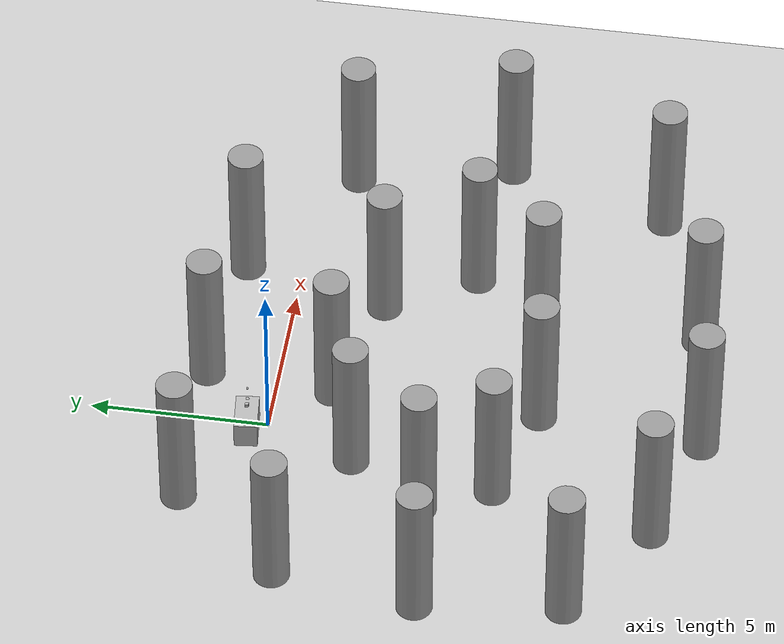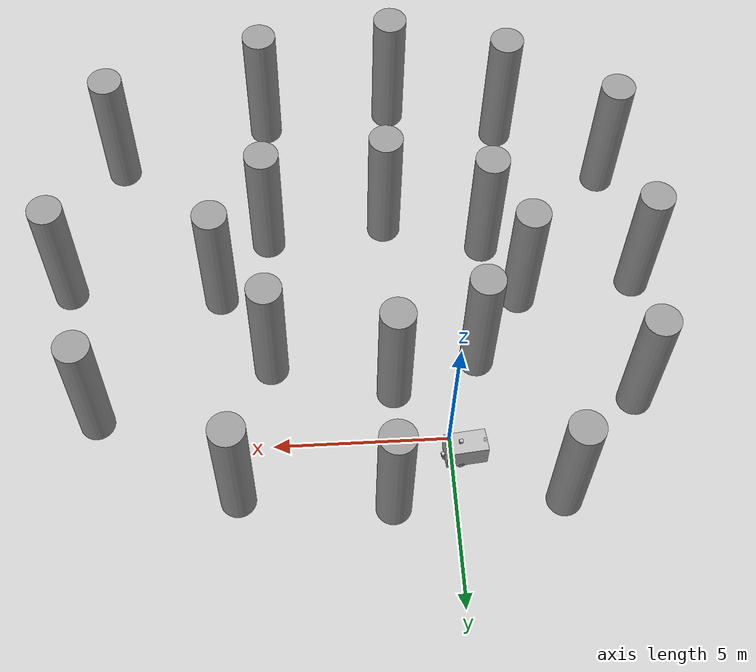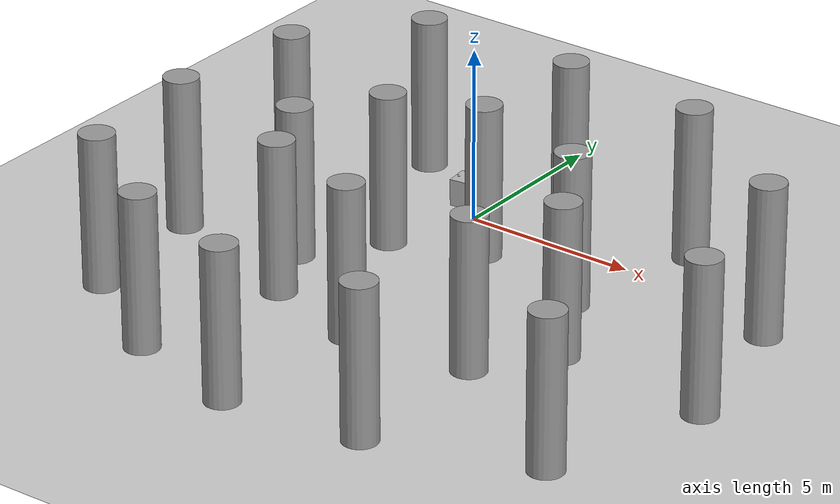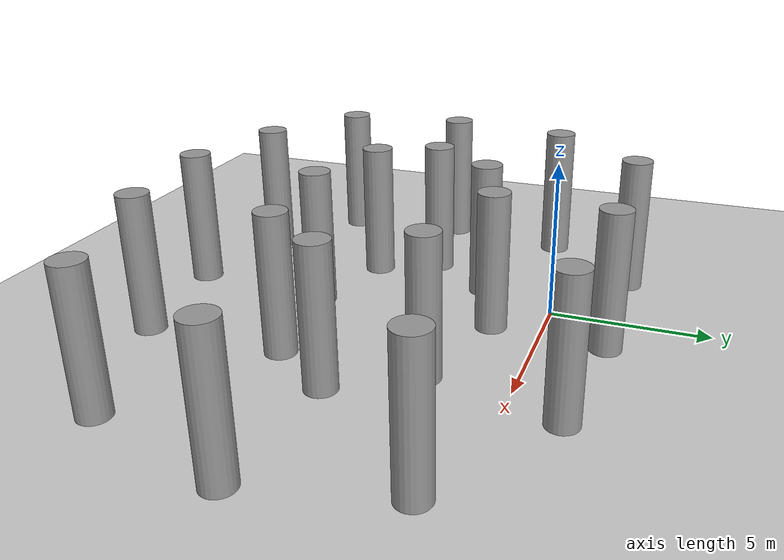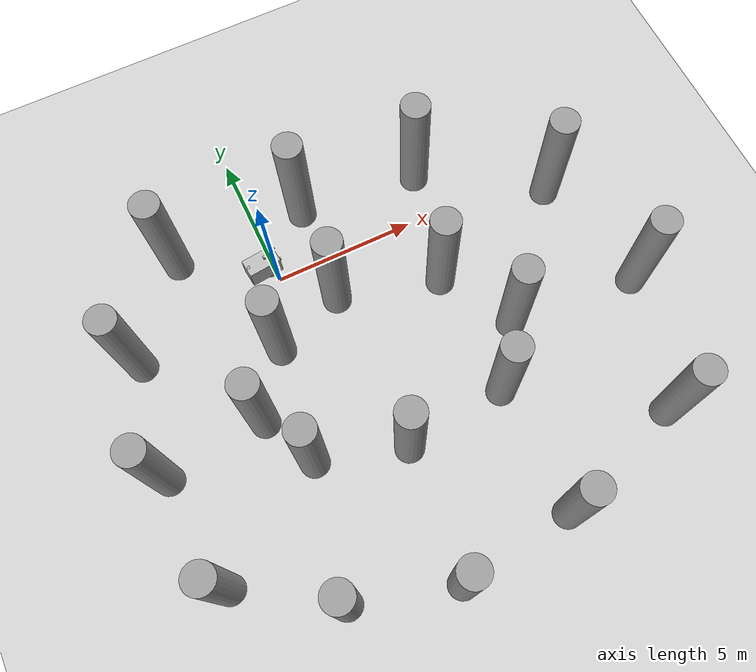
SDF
<sdf version="1.7">
 <world name="default">
  <light name="sun" type="directional">
   <pose>0 0 10 0 -0 0</pose>
   <diffuse>0.8 0.8 0.8 1</diffuse>
   <specular>0.2 0.2 0.2 1</specular>
   <attenuation>
    <range>1000</range>
    <constant>0.9</constant>
    <linear>0.01</linear>
    <quadratic>0.001</quadratic>
   </attenuation>
   <direction>-0.5 0.1 -0.9</direction>
   <spot><inner_angle>0</inner_angle><outer_angle>0</outer_angle><falloff>0</falloff></spot>
  </light>
  <model name="ground_plane">
   <static>1</static>
   <link name="link">
    <collision name="collision">
     <geometry><plane><normal>0 0 1</normal><size>100 100</size></plane></geometry>
     <surface>
      <contact><collide_bitmask>65535</collide_bitmask></contact>
      <friction><ode><mu>100</mu><mu2>50</mu2></ode></friction>
     </surface>
    </collision>
    <visual name="visual">
     <cast_shadows>0</cast_shadows>
     <geometry><plane><normal>0 0 1</normal><size>100 100</size></plane></geometry>
     <material>
      <script><uri>file://media/materials/scripts/gazebo.material</uri><name>Gazebo/Grey</name></script>
     </material>
    </visual>
   </link>
  </model>
  <gravity>0 0 -9.8</gravity>
  <magnetic_field>6e-06 2.3e-05 -4.2e-05</magnetic_field>
  <atmosphere type="adiabatic"/>
  <physics type="ode">
   <max_step_size>0.001</max_step_size>
   <real_time_factor>1</real_time_factor>
   <real_time_update_rate>1000</real_time_update_rate>
  </physics>
  <scene><ambient>0.4 0.4 0.4 1</ambient><background>0.7 0.7 0.7 1</background><shadows>1</shadows></scene>
  <spherical_coordinates>
   <surface_model>EARTH_WGS84</surface_model>
   <latitude_deg>0</latitude_deg>
   <longitude_deg>0</longitude_deg>
   <elevation>0</elevation>
   <heading_deg>0</heading_deg>
  </spherical_coordinates>
  <model name="hermes">
   <link name="base_link">
    <inertial>
     <pose>6e-06 0 -2e-06 0 -0 0</pose>
     <mass>1.00001</mass>
     <inertia>
      <ixx>0.0150013</ixx>
      <ixy>0</ixy>
      <ixz>1.14046e-06</ixz>
      <iyy>0.0375053</iyy>
      <iyz>0</iyz>
      <izz>0.037505</izz>
     </inertia>
    </inertial>
    <collision name="base_link_collision"><geometry><box><size>0.6 0.3 0.3</size></box></geometry></collision>
    <collision name="base_link_fixed_joint_lump__lidar_link_collision_1">
     <pose>0.630975 0 -0.180747 0 -0 0</pose>
     <geometry><box><size>0.1 0.1 0.1</size></box></geometry>
    </collision>
    <visual name="base_link_visual"><geometry><box><size>1.16195 0.651 0.77596</size></box></geometry></visual>
    <visual name="base_link_fixed_joint_lump__camera_link_visual_1">
     <pose>0.555975 0 0.72404 0 1.0466 0</pose>
     <geometry><box><size>0.05 0.05 0.05</size></box></geometry>
    </visual>
    <visual name="base_link_fixed_joint_lump__gps_link_visual_2">
     <pose>0.16 0 0.48011 0 -0 0</pose>
     <geometry><box><size>0.1 0.1 0.1</size></box></geometry>
    </visual>
    <visual name="base_link_fixed_joint_lump__imu_link_visual_3">
     <pose>0.16 0 0 0 -0 0</pose>
     <geometry><box><size>0.05 0.05 0.05</size></box></geometry>
    </visual>
    <visual name="base_link_fixed_joint_lump__lidar_link_visual_4">
     <pose>0.630975 0 -0.180747 0 -0 0</pose>
     <geometry><box><size>0.1 0.1 0.1</size></box></geometry>
    </visual>
    <sensor name="camera1" type="depth">
     <always_on>1</always_on>
     <update_rate>20</update_rate>
     <visualize>1</visualize>
     <camera>
      <horizontal_fov>1.047</horizontal_fov>
      <image><width>640</width><height>480</height><format>R8G8B8</format></image>
      <depth_camera><output>depths</output></depth_camera>
      <clip><near>0.1</near><far>20</far></clip>
     </camera>
     <plugin name="camera_controller" filename="libgazebo_ros_openni_kinect.so">
      <alwaysOn>1</alwaysOn>
      <updateRate>10.0</updateRate>
      <cameraName>camera</cameraName>
      <frameName>camera_link</frameName>
      <imageTopicName>rgb/image_raw</imageTopicName>
      <depthImageTopicName>depth/image_raw</depthImageTopicName>
      <pointCloudTopicName>depth/points</pointCloudTopicName>
      <cameraInfoTopicName>rgb/camera_info</cameraInfoTopicName>
      <depthImageCameraInfoTopicName>depth/camera_info</depthImageCameraInfoTopicName>
      <pointCloudCutoff>0.4</pointCloudCutoff>
      <hackBaseline>0.07</hackBaseline>
      <distortionK1>0.0</distortionK1>
      <distortionK2>0.0</distortionK2>
      <distortionK3>0.0</distortionK3>
      <distortionT1>0.0</distortionT1>
      <distortionT2>0.0</distortionT2>
      <CxPrime>0.0</CxPrime>
      <Cx>0.0</Cx>
      <Cy>0.0</Cy>
      <focalLength>0.0</focalLength>
      <robotNamespace>/</robotNamespace>
     </plugin>
     <pose>0.555975 0 0.72404 0 1.0466 0</pose>
    </sensor>
    <sensor name="imu_sensor" type="imu">
     <always_on>1</always_on>
     <update_rate>100</update_rate>
     <visualize>0</visualize>
     <topic>imu</topic>
     <plugin name="imu_plugin" filename="libgazebo_ros_imu_sensor.so">
      <topicName>imu</topicName>
      <bodyName>imu_link</bodyName>
      <updateRateHZ>100.0</updateRateHZ>
      <gaussianNoise>0.0</gaussianNoise>
      <xyzOffset>0 0 0</xyzOffset>
      <rpyOffset>0 0 0</rpyOffset>
      <frameName>imu_link</frameName>
      <robotNamespace>/</robotNamespace>
     </plugin>
     <pose>0.16 0 0 0 -0 0</pose>
    </sensor>
    <sensor name="head_lidar_sensor" type="ray">
     <visualize>1</visualize>
     <update_rate>25</update_rate>
     <ray>
      <scan>
       <horizontal>
        <samples>720</samples>
        <resolution>1</resolution>
        <min_angle>-2.35619</min_angle>
        <max_angle>2.35619</max_angle>
       </horizontal>
       <vertical><samples>1</samples><min_angle>0</min_angle><max_angle>0</max_angle></vertical>
      </scan>
      <range><min>0.5</min><max>20</max><resolution>0.001</resolution></range>
     </ray>
     <plugin name="gazebo_ros_head_hokuyo_controller" filename="libgazebo_ros_laser.so">
      <topicName>scan</topicName>
      <frameName>lidar_link</frameName>
      <robotNamespace>/</robotNamespace>
     </plugin>
     <pose>0.630975 0 -0.180747 0 -0 0</pose>
    </sensor>
   </link>
   <joint name="back_caster_joint" type="revolute">
    <pose relative_to="base_link">-0.491695 0 0 0 -0 0</pose>
    <parent>base_link</parent>
    <child>back_caster</child>
    <axis>
     <xyz>0 0 1</xyz>
     <limit><lower>-1e+16</lower><upper>1e+16</upper></limit>
     <dynamics><spring_reference>0</spring_reference><spring_stiffness>0</spring_stiffness></dynamics>
    </axis>
   </joint>
   <link name="back_caster">
    <pose relative_to="back_caster_joint">0 0 0 0 -0 0</pose>
    <inertial>
     <mass>0.1</mass>
     <inertia><ixx>0.00083</ixx><ixy>0</ixy><ixz>0</ixz><iyy>0.00083</iyy><iyz>0</iyz><izz>0.000167</izz></inertia>
    </inertial>
    <collision name="back_caster_collision">
     <geometry><box><size>0.1 0.1 0.77596</size></box></geometry>
    </collision>
    <visual name="back_caster_visual"><geometry><box><size>0.1 0.1 0.77596</size></box></geometry></visual>
   </link>
   <joint name="back_wheel_joint" type="revolute">
    <pose relative_to="back_caster">0.05 0 -0.38798 -1.5708 0 0</pose>
    <parent>back_caster</parent>
    <child>back_wheel</child>
    <axis>
     <xyz>0 0 1</xyz>
     <limit><lower>-1e+16</lower><upper>1e+16</upper></limit>
     <dynamics><spring_reference>0</spring_reference><spring_stiffness>0</spring_stiffness></dynamics>
    </axis>
   </joint>
   <link name="back_wheel">
    <pose relative_to="back_wheel_joint">0 0 0 0 -0 0</pose>
    <inertial>
     <mass>0.1</mass>
     <inertia>
      <ixx>5.1458e-05</ixx>
      <ixy>0</ixy>
      <ixz>0</ixz>
      <iyy>5.1458e-05</iyy>
      <iyz>0</iyz>
      <izz>6.125e-05</izz>
     </inertia>
    </inertial>
    <collision name="back_wheel_collision">
     <geometry><cylinder><length>0.05</length><radius>0.1</radius></cylinder></geometry>
    </collision>
    <visual name="back_wheel_visual">
     <geometry><cylinder><length>0.05</length><radius>0.1</radius></cylinder></geometry>
    </visual>
   </link>
   <joint name="front_caster_joint" type="revolute">
    <pose relative_to="base_link">0.491695 0 0 0 -0 0</pose>
    <parent>base_link</parent>
    <child>front_caster</child>
    <axis>
     <xyz>0 0 1</xyz>
     <limit><lower>-1e+16</lower><upper>1e+16</upper></limit>
     <dynamics><spring_reference>0</spring_reference><spring_stiffness>0</spring_stiffness></dynamics>
    </axis>
   </joint>
   <link name="front_caster">
    <pose relative_to="front_caster_joint">0 0 0 0 -0 0</pose>
    <inertial>
     <mass>0.1</mass>
     <inertia><ixx>0.00083</ixx><ixy>0</ixy><ixz>0</ixz><iyy>0.00083</iyy><iyz>0</iyz><izz>0.000167</izz></inertia>
    </inertial>
    <collision name="front_caster_collision">
     <geometry><box><size>0.1 0.1 0.77596</size></box></geometry>
    </collision>
    <visual name="front_caster_visual"><geometry><box><size>0.1 0.1 0.77596</size></box></geometry></visual>
   </link>
   <joint name="front_wheel_joint" type="revolute">
    <pose relative_to="front_caster">0.05 0 -0.38798 -1.5708 0 0</pose>
    <parent>front_caster</parent>
    <child>front_wheel</child>
    <axis>
     <xyz>0 0 1</xyz>
     <limit><lower>-1e+16</lower><upper>1e+16</upper></limit>
     <dynamics><spring_reference>0</spring_reference><spring_stiffness>0</spring_stiffness></dynamics>
    </axis>
   </joint>
   <link name="front_wheel">
    <pose relative_to="front_wheel_joint">0 0 0 0 -0 0</pose>
    <inertial>
     <mass>0.1</mass>
     <inertia>
      <ixx>5.1458e-05</ixx>
      <ixy>0</ixy>
      <ixz>0</ixz>
      <iyy>5.1458e-05</iyy>
      <iyz>0</iyz>
      <izz>6.125e-05</izz>
     </inertia>
    </inertial>
    <collision name="front_wheel_collision">
     <geometry><cylinder><length>0.05</length><radius>0.1</radius></cylinder></geometry>
    </collision>
    <visual name="front_wheel_visual">
     <geometry><cylinder><length>0.05</length><radius>0.1</radius></cylinder></geometry>
    </visual>
   </link>
   <joint name="left_wheel_joint" type="revolute">
    <pose relative_to="base_link">0.159795 0.3005 -0.38978 -1.5708 0 0</pose>
    <parent>base_link</parent>
    <child>left_wheel</child>
    <axis>
     <xyz>0 0 1</xyz>
     <limit><lower>-1e+16</lower><upper>1e+16</upper></limit>
     <dynamics><spring_reference>0</spring_reference><spring_stiffness>0</spring_stiffness></dynamics>
    </axis>
   </joint>
   <link name="left_wheel">
    <pose relative_to="left_wheel_joint">0 0 0 0 -0 0</pose>
    <inertial>
     <mass>0.1</mass>
     <inertia>
      <ixx>5.1458e-05</ixx>
      <ixy>0</ixy>
      <ixz>0</ixz>
      <iyy>5.1458e-05</iyy>
      <iyz>0</iyz>
      <izz>6.125e-05</izz>
     </inertia>
    </inertial>
    <collision name="left_wheel_collision">
     <geometry><cylinder><length>0.05</length><radius>0.1</radius></cylinder></geometry>
    </collision>
    <visual name="left_wheel_visual">
     <geometry><cylinder><length>0.05</length><radius>0.1</radius></cylinder></geometry>
    </visual>
   </link>
   <joint name="right_wheel_joint" type="revolute">
    <pose relative_to="base_link">0.159795 -0.3005 -0.38798 -1.5708 0 0</pose>
    <parent>base_link</parent>
    <child>right_wheel</child>
    <axis>
     <xyz>0 0 1</xyz>
     <limit><lower>-1e+16</lower><upper>1e+16</upper></limit>
     <dynamics><spring_reference>0</spring_reference><spring_stiffness>0</spring_stiffness></dynamics>
    </axis>
   </joint>
   <link name="right_wheel">
    <pose relative_to="right_wheel_joint">0 0 0 0 -0 0</pose>
    <inertial>
     <mass>0.1</mass>
     <inertia>
      <ixx>5.1458e-05</ixx>
      <ixy>0</ixy>
      <ixz>0</ixz>
      <iyy>5.1458e-05</iyy>
      <iyz>0</iyz>
      <izz>6.125e-05</izz>
     </inertia>
    </inertial>
    <collision name="right_wheel_collision">
     <geometry><cylinder><length>0.05</length><radius>0.1</radius></cylinder></geometry>
    </collision>
    <visual name="right_wheel_visual">
     <geometry><cylinder><length>0.05</length><radius>0.1</radius></cylinder></geometry>
    </visual>
   </link>
   <plugin name="differential_drive_controller" filename="libgazebo_ros_diff_drive.so">
    <leftJoint>left_wheel_joint</leftJoint>
    <odometryTopic>odom</odometryTopic>
    <odometryFrame>odom</odometryFrame>
    <publishWheelTF>0</publishWheelTF>
    <publishOdomTF>1</publishOdomTF>
    <wheelTorque>5</wheelTorque>
    <wheelAcceleration>0</wheelAcceleration>
    <updateRate>100</updateRate>
    <odometrySource>world</odometrySource>
    <publishTf>1</publishTf>
    <rosDebugLevel>na</rosDebugLevel>
    <rightJoint>right_wheel_joint</rightJoint>
    <robotBaseFrame>base_link</robotBaseFrame>
    <wheelSeparation>0.25</wheelSeparation>
    <wheelDiameter>0.07</wheelDiameter>
    <publishWheelJointState>1</publishWheelJointState>
    <commandTopic>cmd_vel</commandTopic>
    <robotBaseFrame>base_link</robotBaseFrame>
    <robotNamespace>/</robotNamespace>
   </plugin>
   <static>0</static>
   <plugin name="novatel_gps_sim" filename="libhector_gazebo_ros_gps.so">
    <alwaysOn>1</alwaysOn>
    <updateRate>10.0</updateRate>
    <topicName>gps</topicName>
    <velocityTopicName>gps_velocity</velocityTopicName>
    <drift>5.0 5.0 5.0</drift>
    <gaussianNoise>0.1 0.1 0.1</gaussianNoise>
    <velocityDrift>0 0 0</velocityDrift>
    <velocityGaussianNoise>0.1 0.1 0.1</velocityGaussianNoise>
    <robotNamespace>/</robotNamespace>
    <bodyName>base_link</bodyName>
    <xyzOffset>-0.16 0 -0.48011</xyzOffset>
    <rpyOffset>0 -0 0</rpyOffset>
   </plugin>
   <pose>-0.371971 0.534069 0.488716 0.002993 -0.001453 0.106615</pose>
  </model>
  <model name="unit_cylinder">
   <pose>1.73137 2.01358 2.22223 0 -0 -0.000367</pose>
   <link name="link">
    <inertial>
     <mass>1</mass>
     <inertia><ixx>0.145833</ixx><ixy>0</ixy><ixz>0</ixz><iyy>0.145833</iyy><iyz>0</iyz><izz>0.125</izz></inertia>
    </inertial>
    <collision name="collision">
     <geometry><cylinder><radius>0.5</radius><length>4.44448</length></cylinder></geometry>
    </collision>
    <visual name="visual">
     <geometry><cylinder><radius>0.5</radius><length>4.44448</length></cylinder></geometry>
     <material>
      <script><name>Gazebo/Grey</name><uri>file://media/materials/scripts/gazebo.material</uri></script>
     </material>
    </visual>
   </link>
  </model>
  <model name="unit_cylinder_clone">
   <pose>1.47801 -1.57501 2.22224 0 -0 -0.000356</pose>
   <link name="link">
    <inertial>
     <mass>1</mass>
     <inertia><ixx>0.145833</ixx><ixy>0</ixy><ixz>0</ixz><iyy>0.145833</iyy><iyz>0</iyz><izz>0.125</izz></inertia>
    </inertial>
    <collision name="collision">
     <geometry><cylinder><radius>0.5</radius><length>4.44448</length></cylinder></geometry>
    </collision>
    <visual name="visual">
     <geometry><cylinder><radius>0.5</radius><length>4.44448</length></cylinder></geometry>
     <material>
      <script><name>Gazebo/Grey</name><uri>file://media/materials/scripts/gazebo.material</uri></script>
     </material>
    </visual>
   </link>
  </model>
  <model name="unit_cylinder_clone_0">
   <pose>4.99984 -2.52222 2.22223 0 -0 -0.000397</pose>
   <link name="link">
    <inertial>
     <mass>1</mass>
     <inertia><ixx>0.145833</ixx><ixy>0</ixy><ixz>0</ixz><iyy>0.145833</iyy><iyz>0</iyz><izz>0.125</izz></inertia>
    </inertial>
    <collision name="collision">
     <geometry><cylinder><radius>0.5</radius><length>4.44448</length></cylinder></geometry>
    </collision>
    <visual name="visual">
     <geometry><cylinder><radius>0.5</radius><length>4.44448</length></cylinder></geometry>
     <material>
      <script><name>Gazebo/Grey</name><uri>file://media/materials/scripts/gazebo.material</uri></script>
     </material>
    </visual>
   </link>
  </model>
  <model name="unit_cylinder_clone_1">
   <pose>6.45825 -5.00003 2.22224 -0 -0 -0.000381</pose>
   <link name="link">
    <inertial>
     <mass>1</mass>
     <inertia><ixx>0.145833</ixx><ixy>0</ixy><ixz>0</ixz><iyy>0.145833</iyy><iyz>0</iyz><izz>0.125</izz></inertia>
    </inertial>
    <collision name="collision">
     <geometry><cylinder><radius>0.5</radius><length>4.44448</length></cylinder></geometry>
    </collision>
    <visual name="visual">
     <geometry><cylinder><radius>0.5</radius><length>4.44448</length></cylinder></geometry>
     <material>
      <script><name>Gazebo/Grey</name><uri>file://media/materials/scripts/gazebo.material</uri></script>
     </material>
    </visual>
   </link>
  </model>
  <model name="unit_cylinder_clone_2">
   <pose>4.99986 -7.00002 2.22223 0 -0 -0.000365</pose>
   <link name="link">
    <inertial>
     <mass>1</mass>
     <inertia><ixx>0.145833</ixx><ixy>0</ixy><ixz>0</ixz><iyy>0.145833</iyy><iyz>0</iyz><izz>0.125</izz></inertia>
    </inertial>
    <collision name="collision">
     <geometry><cylinder><radius>0.5</radius><length>4.44448</length></cylinder></geometry>
    </collision>
    <visual name="visual">
     <geometry><cylinder><radius>0.5</radius><length>4.44448</length></cylinder></geometry>
     <material>
      <script><name>Gazebo/Grey</name><uri>file://media/materials/scripts/gazebo.material</uri></script>
     </material>
    </visual>
   </link>
  </model>
  <model name="unit_cylinder_clone_3">
   <pose>1.41472 -7.41331 2.22224 0 -0 -0.000323</pose>
   <link name="link">
    <inertial>
     <mass>1</mass>
     <inertia><ixx>0.145833</ixx><ixy>0</ixy><ixz>0</ixz><iyy>0.145833</iyy><iyz>0</iyz><izz>0.125</izz></inertia>
    </inertial>
    <collision name="collision">
     <geometry><cylinder><radius>0.5</radius><length>4.44448</length></cylinder></geometry>
    </collision>
    <visual name="visual">
     <geometry><cylinder><radius>0.5</radius><length>4.44448</length></cylinder></geometry>
     <material>
      <script><name>Gazebo/Grey</name><uri>file://media/materials/scripts/gazebo.material</uri></script>
     </material>
    </visual>
   </link>
  </model>
  <model name="unit_cylinder_clone_4">
   <pose>-1.56061 -6.51039 2.22223 0 -0 -0.000328</pose>
   <link name="link">
    <inertial>
     <mass>1</mass>
     <inertia><ixx>0.145833</ixx><ixy>0</ixy><ixz>0</ixz><iyy>0.145833</iyy><iyz>0</iyz><izz>0.125</izz></inertia>
    </inertial>
    <collision name="collision">
     <geometry><cylinder><radius>0.5</radius><length>4.44448</length></cylinder></geometry>
    </collision>
    <visual name="visual">
     <geometry><cylinder><radius>0.5</radius><length>4.44448</length></cylinder></geometry>
     <material>
      <script><name>Gazebo/Grey</name><uri>file://media/materials/scripts/gazebo.material</uri></script>
     </material>
    </visual>
   </link>
  </model>
  <model name="unit_cylinder_clone_5">
   <pose>-2.47892 -4.59543 2.22224 -0 -0 -0.000318</pose>
   <link name="link">
    <inertial>
     <mass>1</mass>
     <inertia><ixx>0.145833</ixx><ixy>0</ixy><ixz>0</ixz><iyy>0.145833</iyy><iyz>0</iyz><izz>0.125</izz></inertia>
    </inertial>
    <collision name="collision">
     <geometry><cylinder><radius>0.5</radius><length>4.44448</length></cylinder></geometry>
    </collision>
    <visual name="visual">
     <geometry><cylinder><radius>0.5</radius><length>4.44448</length></cylinder></geometry>
     <material>
      <script><name>Gazebo/Grey</name><uri>file://media/materials/scripts/gazebo.material</uri></script>
     </material>
    </visual>
   </link>
  </model>
  <model name="unit_cylinder_clone_6">
   <pose>-1.00011 -2.49656 2.22224 -0 -0 -0.000302</pose>
   <link name="link">
    <inertial>
     <mass>1</mass>
     <inertia><ixx>0.145833</ixx><ixy>0</ixy><ixz>0</ixz><iyy>0.145833</iyy><iyz>0</iyz><izz>0.125</izz></inertia>
    </inertial>
    <collision name="collision">
     <geometry><cylinder><radius>0.5</radius><length>4.44448</length></cylinder></geometry>
    </collision>
    <visual name="visual">
     <geometry><cylinder><radius>0.5</radius><length>4.44448</length></cylinder></geometry>
     <material>
      <script><name>Gazebo/Grey</name><uri>file://media/materials/scripts/gazebo.material</uri></script>
     </material>
    </visual>
   </link>
  </model>
  <model name="unit_cylinder_clone_7">
   <pose>5.99991 1.58255 2.22224 -0 -0 -0.000275</pose>
   <link name="link">
    <inertial>
     <mass>1</mass>
     <inertia><ixx>0.145833</ixx><ixy>0</ixy><ixz>0</ixz><iyy>0.145833</iyy><iyz>0</iyz><izz>0.125</izz></inertia>
    </inertial>
    <collision name="collision">
     <geometry><cylinder><radius>0.5</radius><length>4.44448</length></cylinder></geometry>
    </collision>
    <visual name="visual">
     <geometry><cylinder><radius>0.5</radius><length>4.44448</length></cylinder></geometry>
     <material>
      <script><name>Gazebo/Grey</name><uri>file://media/materials/scripts/gazebo.material</uri></script>
     </material>
    </visual>
   </link>
  </model>
  <model name="unit_cylinder_clone_8">
   <pose>9.99991 -1.00002 2.22223 0 -0 -0.000275</pose>
   <link name="link">
    <inertial>
     <mass>1</mass>
     <inertia><ixx>0.145833</ixx><ixy>0</ixy><ixz>0</ixz><iyy>0.145833</iyy><iyz>0</iyz><izz>0.125</izz></inertia>
    </inertial>
    <collision name="collision">
     <geometry><cylinder><radius>0.5</radius><length>4.44448</length></cylinder></geometry>
    </collision>
    <visual name="visual">
     <geometry><cylinder><radius>0.5</radius><length>4.44448</length></cylinder></geometry>
     <material>
      <script><name>Gazebo/Grey</name><uri>file://media/materials/scripts/gazebo.material</uri></script>
     </material>
    </visual>
   </link>
  </model>
  <model name="unit_cylinder_clone_9">
   <pose>10.9999 -5.40829 2.22224 -0 -0 -0.00026</pose>
   <link name="link">
    <inertial>
     <mass>1</mass>
     <inertia><ixx>0.145833</ixx><ixy>0</ixy><ixz>0</ixz><iyy>0.145833</iyy><iyz>0</iyz><izz>0.125</izz></inertia>
    </inertial>
    <collision name="collision">
     <geometry><cylinder><radius>0.5</radius><length>4.44448</length></cylinder></geometry>
    </collision>
    <visual name="visual">
     <geometry><cylinder><radius>0.5</radius><length>4.44448</length></cylinder></geometry>
     <material>
      <script><name>Gazebo/Grey</name><uri>file://media/materials/scripts/gazebo.material</uri></script>
     </material>
    </visual>
   </link>
  </model>
  <model name="unit_cylinder_clone_10">
   <pose>9.55526 -10 2.22224 0 -0 -0.000244</pose>
   <link name="link">
    <inertial>
     <mass>1</mass>
     <inertia><ixx>0.145833</ixx><ixy>0</ixy><ixz>0</ixz><iyy>0.145833</iyy><iyz>0</iyz><izz>0.125</izz></inertia>
    </inertial>
    <collision name="collision">
     <geometry><cylinder><radius>0.5</radius><length>4.44448</length></cylinder></geometry>
    </collision>
    <visual name="visual">
     <geometry><cylinder><radius>0.5</radius><length>4.44448</length></cylinder></geometry>
     <material>
      <script><name>Gazebo/Grey</name><uri>file://media/materials/scripts/gazebo.material</uri></script>
     </material>
    </visual>
   </link>
  </model>
  <model name="unit_cylinder_clone_11">
   <pose>4.99995 -11.522 2.22223 0 -0 -0.000342</pose>
   <link name="link">
    <inertial>
     <mass>1</mass>
     <inertia><ixx>0.145833</ixx><ixy>0</ixy><ixz>0</ixz><iyy>0.145833</iyy><iyz>0</iyz><izz>0.125</izz></inertia>
    </inertial>
    <collision name="collision">
     <geometry><cylinder><radius>0.5</radius><length>4.44448</length></cylinder></geometry>
    </collision>
    <visual name="visual">
     <geometry><cylinder><radius>0.5</radius><length>4.44448</length></cylinder></geometry>
     <material>
      <script><name>Gazebo/Grey</name><uri>file://media/materials/scripts/gazebo.material</uri></script>
     </material>
    </visual>
   </link>
  </model>
  <model name="unit_cylinder_clone_12">
   <pose>0.999946 -12 2.22223 0 -0 -0.000376</pose>
   <link name="link">
    <inertial>
     <mass>1</mass>
     <inertia><ixx>0.145833</ixx><ixy>0</ixy><ixz>0</ixz><iyy>0.145833</iyy><iyz>0</iyz><izz>0.125</izz></inertia>
    </inertial>
    <collision name="collision">
     <geometry><cylinder><radius>0.5</radius><length>4.44448</length></cylinder></geometry>
    </collision>
    <visual name="visual">
     <geometry><cylinder><radius>0.5</radius><length>4.44448</length></cylinder></geometry>
     <material>
      <script><name>Gazebo/Grey</name><uri>file://media/materials/scripts/gazebo.material</uri></script>
     </material>
    </visual>
   </link>
  </model>
  <model name="unit_cylinder_clone_13">
   <pose>-2.47001 -11 2.22223 0 -0 -0.000362</pose>
   <link name="link">
    <inertial>
     <mass>1</mass>
     <inertia><ixx>0.145833</ixx><ixy>0</ixy><ixz>0</ixz><iyy>0.145833</iyy><iyz>0</iyz><izz>0.125</izz></inertia>
    </inertial>
    <collision name="collision">
     <geometry><cylinder><radius>0.5</radius><length>4.44448</length></cylinder></geometry>
    </collision>
    <visual name="visual">
     <geometry><cylinder><radius>0.5</radius><length>4.44448</length></cylinder></geometry>
     <material>
      <script><name>Gazebo/Grey</name><uri>file://media/materials/scripts/gazebo.material</uri></script>
     </material>
    </visual>
   </link>
  </model>
  <model name="unit_cylinder_clone_14">
   <pose>-5.53004 -9.00001 2.22224 -0 -0 -0.000378</pose>
   <link name="link">
    <inertial>
     <mass>1</mass>
     <inertia><ixx>0.145833</ixx><ixy>0</ixy><ixz>0</ixz><iyy>0.145833</iyy><iyz>0</iyz><izz>0.125</izz></inertia>
    </inertial>
    <collision name="collision">
     <geometry><cylinder><radius>0.5</radius><length>4.44448</length></cylinder></geometry>
    </collision>
    <visual name="visual">
     <geometry><cylinder><radius>0.5</radius><length>4.44448</length></cylinder></geometry>
     <material>
      <script><name>Gazebo/Grey</name><uri>file://media/materials/scripts/gazebo.material</uri></script>
     </material>
    </visual>
   </link>
  </model>
  <model name="unit_cylinder_clone_15">
   <pose>-6.00003 -5.00001 2.22223 0 -0 -0.000379</pose>
   <link name="link">
    <inertial>
     <mass>1</mass>
     <inertia><ixx>0.145833</ixx><ixy>0</ixy><ixz>0</ixz><iyy>0.145833</iyy><iyz>0</iyz><izz>0.125</izz></inertia>
    </inertial>
    <collision name="collision">
     <geometry><cylinder><radius>0.5</radius><length>4.44448</length></cylinder></geometry>
    </collision>
    <visual name="visual">
     <geometry><cylinder><radius>0.5</radius><length>4.44448</length></cylinder></geometry>
     <material>
      <script><name>Gazebo/Grey</name><uri>file://media/materials/scripts/gazebo.material</uri></script>
     </material>
    </visual>
   </link>
  </model>
  <model name="unit_cylinder_clone_16">
   <pose>-5.435 -1.00001 2.22224 -0 -0 -0.00038</pose>
   <link name="link">
    <inertial>
     <mass>1</mass>
     <inertia><ixx>0.145833</ixx><ixy>0</ixy><ixz>0</ixz><iyy>0.145833</iyy><iyz>0</iyz><izz>0.125</izz></inertia>
    </inertial>
    <collision name="collision">
     <geometry><cylinder><radius>0.5</radius><length>4.44448</length></cylinder></geometry>
    </collision>
    <visual name="visual">
     <geometry><cylinder><radius>0.5</radius><length>4.44448</length></cylinder></geometry>
     <material>
      <script><name>Gazebo/Grey</name><uri>file://media/materials/scripts/gazebo.material</uri></script>
     </material>
    </visual>
   </link>
  </model>
  <model name="unit_cylinder_clone_17">
   <pose>-3.00001 2 2.22224 0 -0 -0.000362</pose>
   <link name="link">
    <inertial>
     <mass>1</mass>
     <inertia><ixx>0.145833</ixx><ixy>0</ixy><ixz>0</ixz><iyy>0.145833</iyy><iyz>0</iyz><izz>0.125</izz></inertia>
    </inertial>
    <collision name="collision">
     <geometry><cylinder><radius>0.5</radius><length>4.44448</length></cylinder></geometry>
    </collision>
    <visual name="visual">
     <geometry><cylinder><radius>0.5</radius><length>4.44448</length></cylinder></geometry>
     <material>
      <script><name>Gazebo/Grey</name><uri>file://media/materials/scripts/gazebo.material</uri></script>
     </material>
    </visual>
   </link>
  </model>
 </world>
</sdf>
